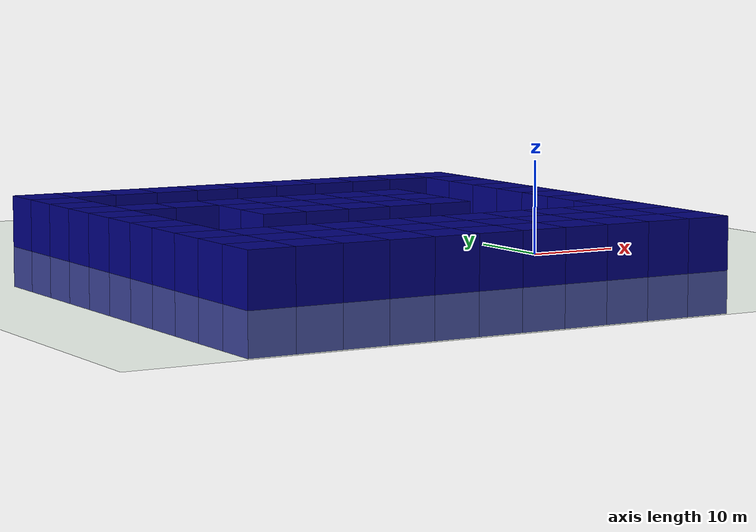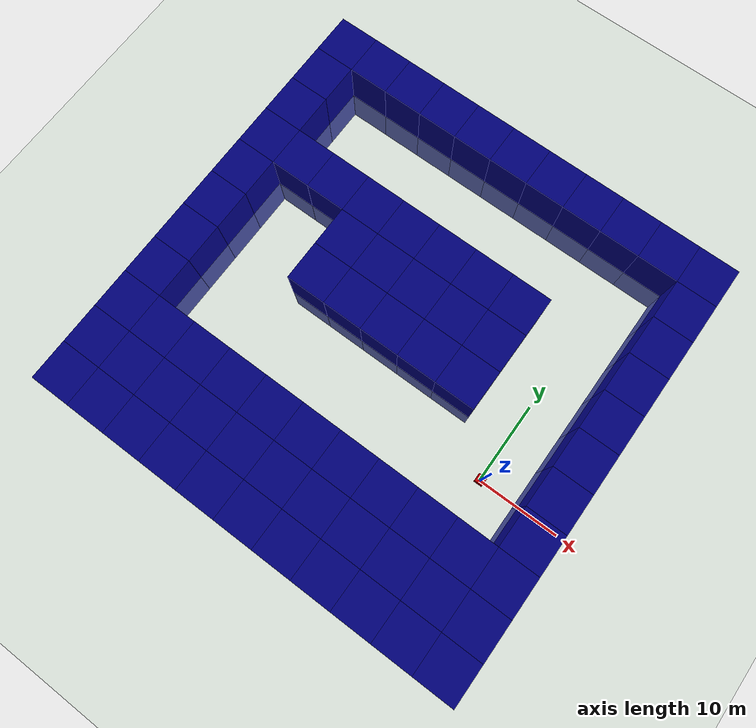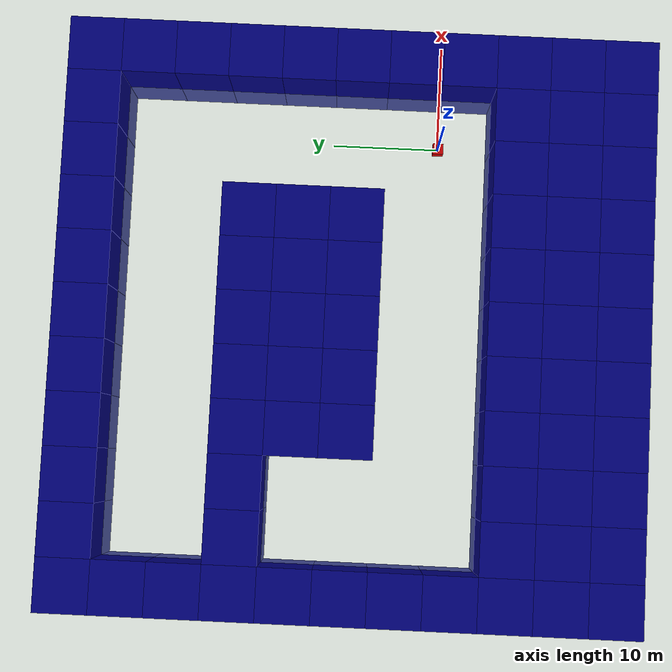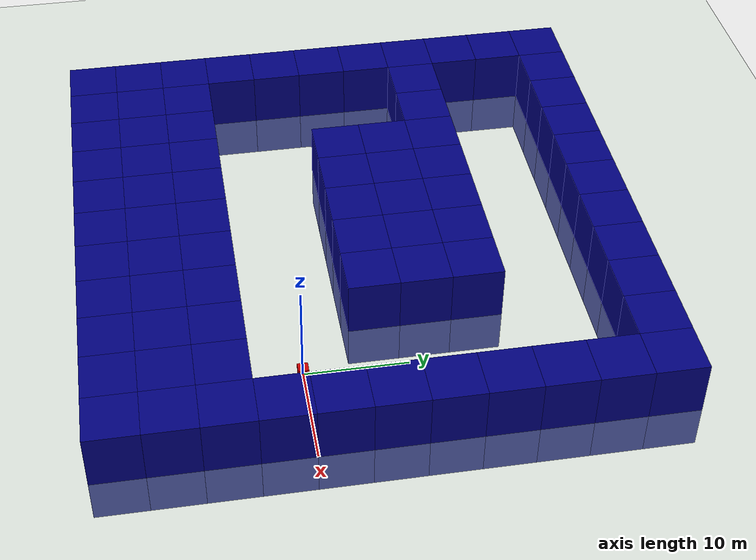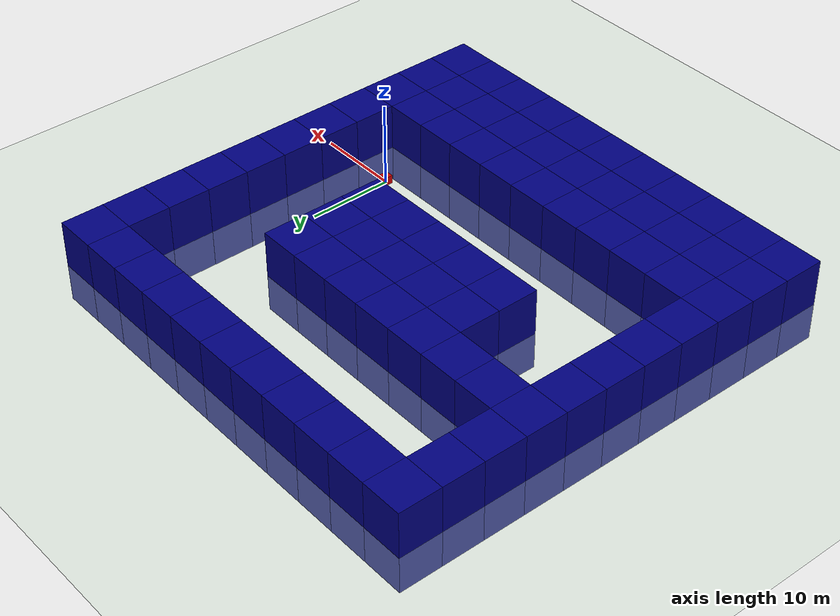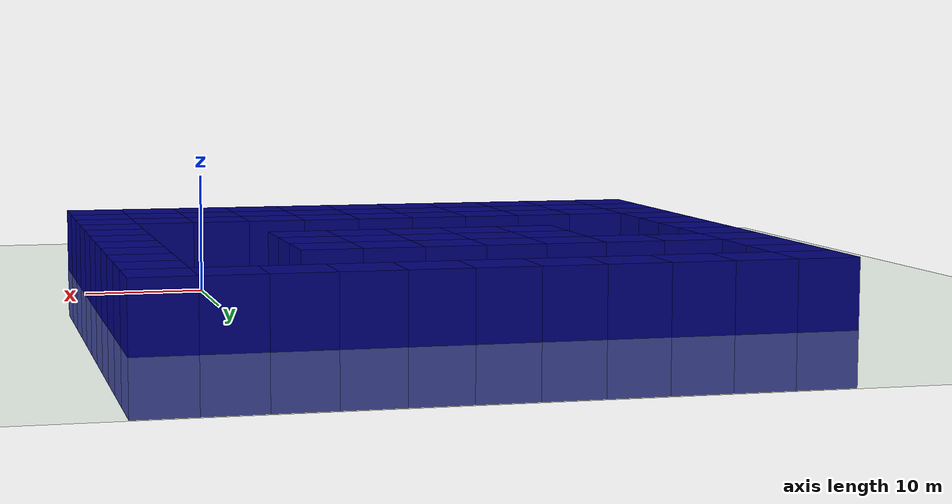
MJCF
<mujoco>
        <default>
            <joint armature="1" damping="1" limited="true"/>
            <geom conaffinity="0" condim="3" density="5.0" friction="1 0.5 0.5" margin="0.01" rgba="0.8 0.6 0.4 1"/>
        </default>

        <asset>
            <texture name="texplane" type="2d" builtin="flat" rgb1="1 1 1" width="4096" height="4096"/>
            <material name="MatPlane" reflectance="0" texture="texplane" texrepeat="1 1" texuniform="true"/>~
        </asset>
        <worldbody>
        <camera name="top_view" mode="trackcom" pos="20 20 30" xyaxes="1 0 0 0 1 0" fovy = "50"/>
        <geom conaffinity="0" name="Goal" type="box" pos="0 0 0.5" size="0.5 0.5 0.5" rgba="0.8 0.0 0.0 1"/>
        <geom conaffinity="1" condim="3" material="MatPlane" name="floor" pos="0 0 0" rgba="0.8 0.9 0.8 1" size="75 75 40" type="plane"/>
        <light cutoff="100" diffuse="1 1 1" dir="-0 0 -1.3" directional="true" exponent="1" pos="0 0 1.3" specular=".1 .1 .1"/>

                <geom conaffinity="1" type="box" name="wall_0_0" size="2.5 2.5 5" pos="-42.5 -17.5 0.5" rgba="0.0 0.0 0.5 1" />

                <geom conaffinity="1" type="box" name="wall_0_1" size="2.5 2.5 5" pos="-42.5 -12.5 0.5" rgba="0.0 0.0 0.5 1" />

                <geom conaffinity="1" type="box" name="wall_0_2" size="2.5 2.5 5" pos="-42.5 -7.5 0.5" rgba="0.0 0.0 0.5 1" />

                <geom conaffinity="1" type="box" name="wall_0_3" size="2.5 2.5 5" pos="-42.5 -2.5 0.5" rgba="0.0 0.0 0.5 1" />

                <geom conaffinity="1" type="box" name="wall_0_4" size="2.5 2.5 5" pos="-42.5 2.5 0.5" rgba="0.0 0.0 0.5 1" />

                <geom conaffinity="1" type="box" name="wall_0_5" size="2.5 2.5 5" pos="-42.5 7.5 0.5" rgba="0.0 0.0 0.5 1" />

                <geom conaffinity="1" type="box" name="wall_0_6" size="2.5 2.5 5" pos="-42.5 12.5 0.5" rgba="0.0 0.0 0.5 1" />

                <geom conaffinity="1" type="box" name="wall_0_7" size="2.5 2.5 5" pos="-42.5 17.5 0.5" rgba="0.0 0.0 0.5 1" />

                <geom conaffinity="1" type="box" name="wall_0_8" size="2.5 2.5 5" pos="-42.5 22.5 0.5" rgba="0.0 0.0 0.5 1" />

                <geom conaffinity="1" type="box" name="wall_0_9" size="2.5 2.5 5" pos="-42.5 27.5 0.5" rgba="0.0 0.0 0.5 1" />

                <geom conaffinity="1" type="box" name="wall_0_10" size="2.5 2.5 5" pos="-42.5 32.5 0.5" rgba="0.0 0.0 0.5 1" />

                <geom conaffinity="1" type="box" name="wall_1_0" size="2.5 2.5 5" pos="-37.5 -17.5 0.5" rgba="0.0 0.0 0.5 1" />

                <geom conaffinity="1" type="box" name="wall_1_1" size="2.5 2.5 5" pos="-37.5 -12.5 0.5" rgba="0.0 0.0 0.5 1" />

                <geom conaffinity="1" type="box" name="wall_1_2" size="2.5 2.5 5" pos="-37.5 -7.5 0.5" rgba="0.0 0.0 0.5 1" />

                <geom conaffinity="1" type="box" name="wall_1_7" size="2.5 2.5 5" pos="-37.5 17.5 0.5" rgba="0.0 0.0 0.5 1" />

                <geom conaffinity="1" type="box" name="wall_1_10" size="2.5 2.5 5" pos="-37.5 32.5 0.5" rgba="0.0 0.0 0.5 1" />

                <geom conaffinity="1" type="box" name="wall_2_0" size="2.5 2.5 5" pos="-32.5 -17.5 0.5" rgba="0.0 0.0 0.5 1" />

                <geom conaffinity="1" type="box" name="wall_2_1" size="2.5 2.5 5" pos="-32.5 -12.5 0.5" rgba="0.0 0.0 0.5 1" />

                <geom conaffinity="1" type="box" name="wall_2_2" size="2.5 2.5 5" pos="-32.5 -7.5 0.5" rgba="0.0 0.0 0.5 1" />

                <geom conaffinity="1" type="box" name="wall_2_7" size="2.5 2.5 5" pos="-32.5 17.5 0.5" rgba="0.0 0.0 0.5 1" />

                <geom conaffinity="1" type="box" name="wall_2_10" size="2.5 2.5 5" pos="-32.5 32.5 0.5" rgba="0.0 0.0 0.5 1" />

                <geom conaffinity="1" type="box" name="wall_3_0" size="2.5 2.5 5" pos="-27.5 -17.5 0.5" rgba="0.0 0.0 0.5 1" />

                <geom conaffinity="1" type="box" name="wall_3_1" size="2.5 2.5 5" pos="-27.5 -12.5 0.5" rgba="0.0 0.0 0.5 1" />

                <geom conaffinity="1" type="box" name="wall_3_2" size="2.5 2.5 5" pos="-27.5 -7.5 0.5" rgba="0.0 0.0 0.5 1" />

                <geom conaffinity="1" type="box" name="wall_3_5" size="2.5 2.5 5" pos="-27.5 7.5 0.5" rgba="0.0 0.0 0.5 1" />

                <geom conaffinity="1" type="box" name="wall_3_6" size="2.5 2.5 5" pos="-27.5 12.5 0.5" rgba="0.0 0.0 0.5 1" />

                <geom conaffinity="1" type="box" name="wall_3_7" size="2.5 2.5 5" pos="-27.5 17.5 0.5" rgba="0.0 0.0 0.5 1" />

                <geom conaffinity="1" type="box" name="wall_3_10" size="2.5 2.5 5" pos="-27.5 32.5 0.5" rgba="0.0 0.0 0.5 1" />

                <geom conaffinity="1" type="box" name="wall_4_0" size="2.5 2.5 5" pos="-22.5 -17.5 0.5" rgba="0.0 0.0 0.5 1" />

                <geom conaffinity="1" type="box" name="wall_4_1" size="2.5 2.5 5" pos="-22.5 -12.5 0.5" rgba="0.0 0.0 0.5 1" />

                <geom conaffinity="1" type="box" name="wall_4_2" size="2.5 2.5 5" pos="-22.5 -7.5 0.5" rgba="0.0 0.0 0.5 1" />

                <geom conaffinity="1" type="box" name="wall_4_5" size="2.5 2.5 5" pos="-22.5 7.5 0.5" rgba="0.0 0.0 0.5 1" />

                <geom conaffinity="1" type="box" name="wall_4_6" size="2.5 2.5 5" pos="-22.5 12.5 0.5" rgba="0.0 0.0 0.5 1" />

                <geom conaffinity="1" type="box" name="wall_4_7" size="2.5 2.5 5" pos="-22.5 17.5 0.5" rgba="0.0 0.0 0.5 1" />

                <geom conaffinity="1" type="box" name="wall_4_10" size="2.5 2.5 5" pos="-22.5 32.5 0.5" rgba="0.0 0.0 0.5 1" />

                <geom conaffinity="1" type="box" name="wall_5_0" size="2.5 2.5 5" pos="-17.5 -17.5 0.5" rgba="0.0 0.0 0.5 1" />

                <geom conaffinity="1" type="box" name="wall_5_1" size="2.5 2.5 5" pos="-17.5 -12.5 0.5" rgba="0.0 0.0 0.5 1" />

                <geom conaffinity="1" type="box" name="wall_5_2" size="2.5 2.5 5" pos="-17.5 -7.5 0.5" rgba="0.0 0.0 0.5 1" />

                <geom conaffinity="1" type="box" name="wall_5_5" size="2.5 2.5 5" pos="-17.5 7.5 0.5" rgba="0.0 0.0 0.5 1" />

                <geom conaffinity="1" type="box" name="wall_5_6" size="2.5 2.5 5" pos="-17.5 12.5 0.5" rgba="0.0 0.0 0.5 1" />

                <geom conaffinity="1" type="box" name="wall_5_7" size="2.5 2.5 5" pos="-17.5 17.5 0.5" rgba="0.0 0.0 0.5 1" />

                <geom conaffinity="1" type="box" name="wall_5_10" size="2.5 2.5 5" pos="-17.5 32.5 0.5" rgba="0.0 0.0 0.5 1" />

                <geom conaffinity="1" type="box" name="wall_6_0" size="2.5 2.5 5" pos="-12.5 -17.5 0.5" rgba="0.0 0.0 0.5 1" />

                <geom conaffinity="1" type="box" name="wall_6_1" size="2.5 2.5 5" pos="-12.5 -12.5 0.5" rgba="0.0 0.0 0.5 1" />

                <geom conaffinity="1" type="box" name="wall_6_2" size="2.5 2.5 5" pos="-12.5 -7.5 0.5" rgba="0.0 0.0 0.5 1" />

                <geom conaffinity="1" type="box" name="wall_6_5" size="2.5 2.5 5" pos="-12.5 7.5 0.5" rgba="0.0 0.0 0.5 1" />

                <geom conaffinity="1" type="box" name="wall_6_6" size="2.5 2.5 5" pos="-12.5 12.5 0.5" rgba="0.0 0.0 0.5 1" />

                <geom conaffinity="1" type="box" name="wall_6_7" size="2.5 2.5 5" pos="-12.5 17.5 0.5" rgba="0.0 0.0 0.5 1" />

                <geom conaffinity="1" type="box" name="wall_6_10" size="2.5 2.5 5" pos="-12.5 32.5 0.5" rgba="0.0 0.0 0.5 1" />

                <geom conaffinity="1" type="box" name="wall_7_0" size="2.5 2.5 5" pos="-7.5 -17.5 0.5" rgba="0.0 0.0 0.5 1" />

                <geom conaffinity="1" type="box" name="wall_7_1" size="2.5 2.5 5" pos="-7.5 -12.5 0.5" rgba="0.0 0.0 0.5 1" />

                <geom conaffinity="1" type="box" name="wall_7_2" size="2.5 2.5 5" pos="-7.5 -7.5 0.5" rgba="0.0 0.0 0.5 1" />

                <geom conaffinity="1" type="box" name="wall_7_5" size="2.5 2.5 5" pos="-7.5 7.5 0.5" rgba="0.0 0.0 0.5 1" />

                <geom conaffinity="1" type="box" name="wall_7_6" size="2.5 2.5 5" pos="-7.5 12.5 0.5" rgba="0.0 0.0 0.5 1" />

                <geom conaffinity="1" type="box" name="wall_7_7" size="2.5 2.5 5" pos="-7.5 17.5 0.5" rgba="0.0 0.0 0.5 1" />

                <geom conaffinity="1" type="box" name="wall_7_10" size="2.5 2.5 5" pos="-7.5 32.5 0.5" rgba="0.0 0.0 0.5 1" />

                <geom conaffinity="1" type="box" name="wall_8_0" size="2.5 2.5 5" pos="-2.5 -17.5 0.5" rgba="0.0 0.0 0.5 1" />

                <geom conaffinity="1" type="box" name="wall_8_1" size="2.5 2.5 5" pos="-2.5 -12.5 0.5" rgba="0.0 0.0 0.5 1" />

                <geom conaffinity="1" type="box" name="wall_8_2" size="2.5 2.5 5" pos="-2.5 -7.5 0.5" rgba="0.0 0.0 0.5 1" />

                <geom conaffinity="1" type="box" name="wall_8_10" size="2.5 2.5 5" pos="-2.5 32.5 0.5" rgba="0.0 0.0 0.5 1" />

                <geom conaffinity="1" type="box" name="wall_9_0" size="2.5 2.5 5" pos="2.5 -17.5 0.5" rgba="0.0 0.0 0.5 1" />

                <geom conaffinity="1" type="box" name="wall_9_1" size="2.5 2.5 5" pos="2.5 -12.5 0.5" rgba="0.0 0.0 0.5 1" />

                <geom conaffinity="1" type="box" name="wall_9_2" size="2.5 2.5 5" pos="2.5 -7.5 0.5" rgba="0.0 0.0 0.5 1" />

                <geom conaffinity="1" type="box" name="wall_9_10" size="2.5 2.5 5" pos="2.5 32.5 0.5" rgba="0.0 0.0 0.5 1" />

                <geom conaffinity="1" type="box" name="wall_10_0" size="2.5 2.5 5" pos="7.5 -17.5 0.5" rgba="0.0 0.0 0.5 1" />

                <geom conaffinity="1" type="box" name="wall_10_1" size="2.5 2.5 5" pos="7.5 -12.5 0.5" rgba="0.0 0.0 0.5 1" />

                <geom conaffinity="1" type="box" name="wall_10_2" size="2.5 2.5 5" pos="7.5 -7.5 0.5" rgba="0.0 0.0 0.5 1" />

                <geom conaffinity="1" type="box" name="wall_10_3" size="2.5 2.5 5" pos="7.5 -2.5 0.5" rgba="0.0 0.0 0.5 1" />

                <geom conaffinity="1" type="box" name="wall_10_4" size="2.5 2.5 5" pos="7.5 2.5 0.5" rgba="0.0 0.0 0.5 1" />

                <geom conaffinity="1" type="box" name="wall_10_5" size="2.5 2.5 5" pos="7.5 7.5 0.5" rgba="0.0 0.0 0.5 1" />

                <geom conaffinity="1" type="box" name="wall_10_6" size="2.5 2.5 5" pos="7.5 12.5 0.5" rgba="0.0 0.0 0.5 1" />

                <geom conaffinity="1" type="box" name="wall_10_7" size="2.5 2.5 5" pos="7.5 17.5 0.5" rgba="0.0 0.0 0.5 1" />

                <geom conaffinity="1" type="box" name="wall_10_8" size="2.5 2.5 5" pos="7.5 22.5 0.5" rgba="0.0 0.0 0.5 1" />

                <geom conaffinity="1" type="box" name="wall_10_9" size="2.5 2.5 5" pos="7.5 27.5 0.5" rgba="0.0 0.0 0.5 1" />

                <geom conaffinity="1" type="box" name="wall_10_10" size="2.5 2.5 5" pos="7.5 32.5 0.5" rgba="0.0 0.0 0.5 1" />

        </worldbody>
    </mujoco>
